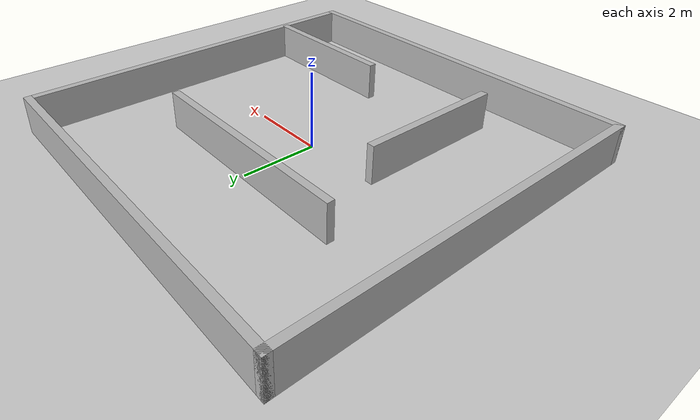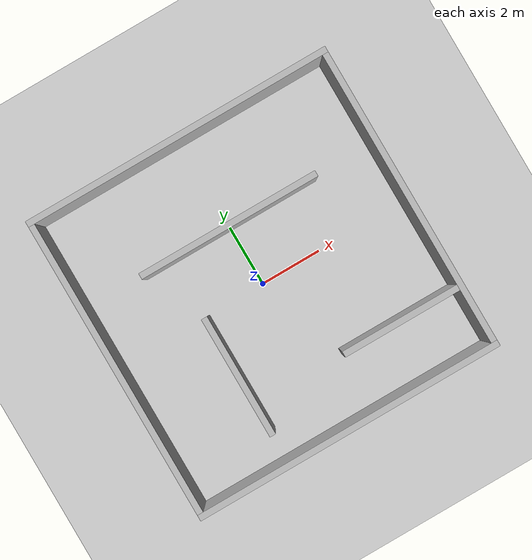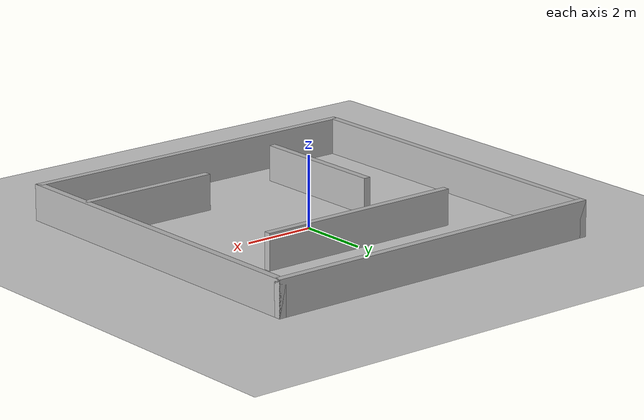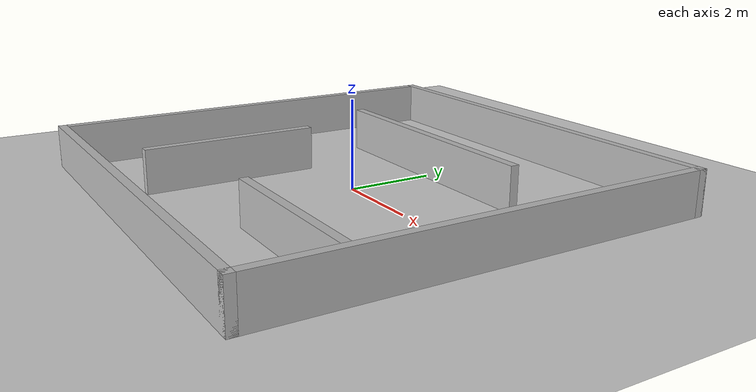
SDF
<?xml version="1.0" ?>
<sdf version="1.8">
  <world name="maze">
    <physics name="1ms" type="ignored">
      <max_step_size>0.001</max_step_size>
      <real_time_factor>1.0</real_time_factor>
    </physics>
    <plugin
      filename="libignition-gazebo-physics-system.so"
      name="ignition::gazebo::systems::Physics">
    </plugin>
    <plugin
      filename="libignition-gazebo-user-commands-system.so"
      name="ignition::gazebo::systems::UserCommands">
    </plugin>
    <plugin
      filename="libignition-gazebo-scene-broadcaster-system.so"
      name="ignition::gazebo::systems::SceneBroadcaster">
    </plugin>
    <plugin
      filename="libignition-gazebo-sensors-system.so"
      name="ignition::gazebo::systems::Sensors">
      <render_engine>ogre2</render_engine>
    </plugin>
    <plugin
      filename="libignition-gazebo-contact-system.so"
      name="ignition::gazebo::systems::Contact">
    </plugin>

    <!-- Light -->
    <light type="directional" name="sun">
      <cast_shadows>true</cast_shadows>
      <pose>0 0 10 0 0 0</pose>
      <diffuse>0.8 0.8 0.8 1</diffuse>
      <specular>0.2 0.2 0.2 1</specular>
      <attenuation>
        <range>1000</range>
        <constant>0.9</constant>
        <linear>0.01</linear>
        <quadratic>0.001</quadratic>
      </attenuation>
      <direction>-0.5 0.1 -0.9</direction>
    </light>

    <!-- Ground -->
    <model name="ground_plane">
      <static>true</static>
      <link name="link">
        <collision name="collision">
          <geometry>
            <plane>
              <normal>0 0 1</normal>
              <size>100 100</size>
            </plane>
          </geometry>
        </collision>
        <visual name="visual">
          <geometry>
            <plane>
              <normal>0 0 1</normal>
              <size>100 100</size>
            </plane>
          </geometry>
          <material>
            <ambient>0.8 0.8 0.8 1</ambient>
            <diffuse>0.8 0.8 0.8 1</diffuse>
            <specular>0.8 0.8 0.8 1</specular>
          </material>
        </visual>
      </link>
    </model>

    <!-- Walls -->
    <model name="wall_n">
      <static>true</static>
      <pose>0 5 0.5 0 0 0</pose>
      <link name="link">
        <collision name="col"><geometry><box><size>10.2 0.2 1</size></box></geometry></collision>
        <visual name="vis"><geometry><box><size>10.2 0.2 1</size></box></geometry></visual>
      </link>
    </model>
    <model name="wall_s">
      <static>true</static>
      <pose>0 -5 0.5 0 0 0</pose>
      <link name="link">
        <collision name="col"><geometry><box><size>10.2 0.2 1</size></box></geometry></collision>
        <visual name="vis"><geometry><box><size>10.2 0.2 1</size></box></geometry></visual>
      </link>
    </model>
    <model name="wall_e">
      <static>true</static>
      <pose>5 0 0.5 0 0 0</pose>
      <link name="link">
        <collision name="col"><geometry><box><size>0.2 10.2 1</size></box></geometry></collision>
        <visual name="vis"><geometry><box><size>0.2 10.2 1</size></box></geometry></visual>
      </link>
    </model>
    <model name="wall_w">
      <static>true</static>
      <pose>-5 0 0.5 0 0 0</pose>
      <link name="link">
        <collision name="col"><geometry><box><size>0.2 10.2 1</size></box></geometry></collision>
        <visual name="vis"><geometry><box><size>0.2 10.2 1</size></box></geometry></visual>
      </link>
    </model>

    <!-- Inner Maze walls -->
    <model name="maze_1">
      <static>true</static>
      <pose>0 2 0.5 0 0 0</pose>
      <link name="link">
        <collision name="col"><geometry><box><size>6 0.2 1</size></box></geometry></collision>
        <visual name="vis"><geometry><box><size>6 0.2 1</size></box></geometry></visual>
      </link>
    </model>
    <model name="maze_2">
      <static>true</static>
      <pose>-2 -2 0.5 0 0 0</pose>
      <link name="link">
        <collision name="col"><geometry><box><size>0.2 4 1</size></box></geometry></collision>
        <visual name="vis"><geometry><box><size>0.2 4 1</size></box></geometry></visual>
      </link>
    </model>
    <model name="maze_3">
      <static>true</static>
      <pose>3 -3 0.5 0 0 0</pose>
      <link name="link">
        <collision name="col"><geometry><box><size>4 0.2 1</size></box></geometry></collision>
        <visual name="vis"><geometry><box><size>4 0.2 1</size></box></geometry></visual>
      </link>
    </model>

  </world>
</sdf>
